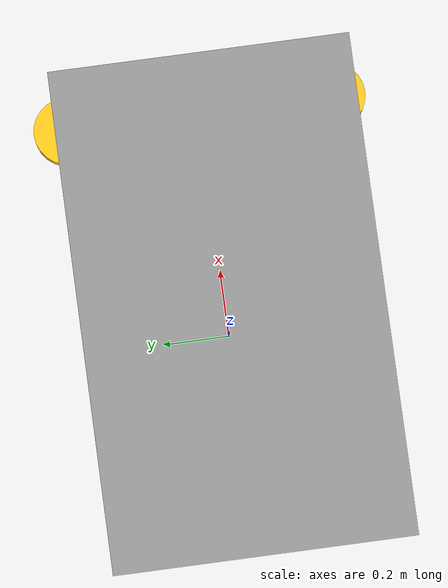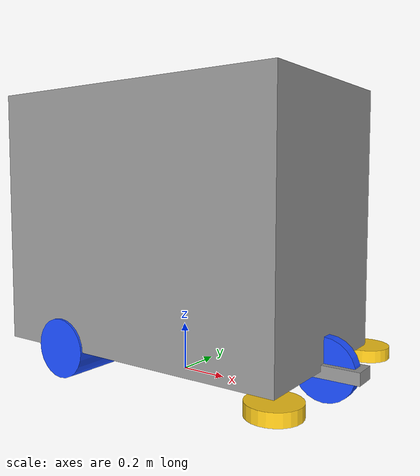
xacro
<?xml version="1.0"?>
<robot xmlns:xacro="http://www.ros.org/wiki/xacro">

  <xacro:include filename="inertial_macros.xacro"/>

  <!-- Eigenschappen -->
  <xacro:property name="base_length" value="1.33"/>
  <xacro:property name="base_width" value="0.8"/>
  <xacro:property name="base_height" value="1.07"/>
  <xacro:property name="base_mass" value="10.0"/>

  <xacro:property name="wheel_radius" value="0.125"/>
  <xacro:property name="wheel_thickness" value="0.05"/>
  <xacro:property name="wheel_mass" value="1.0"/>
  <xacro:property name="wheel_separation" value="0.82"/>

  <xacro:property name="front_wheel_offset_x" value="${base_length/2}"/>
  <xacro:property name="rear_wheel_offset_x" value="${-base_length/2 + 0.32}"/>

  <!-- Wielen komen met hun onderkant op z=0 -->
  <xacro:property name="wheel_offset_z" value="${wheel_radius}"/>

  <xacro:property name="brush_offset_y" value="${base_width/2 + 0.1}"/>
  <xacro:property name="brush_radius" value="0.1"/>
  <xacro:property name="brush_length" value="0.05"/>

  <!-- Kleuren -->
  <material name="blue">
    <color rgba="0.1 0.3 1.0 1.0"/>
  </material>

  <material name="yellow">
    <color rgba="1.0 0.8 0.1 1.0"/>
  </material>

  <material name="gray">
    <color rgba="0.6 0.6 0.6 1.0"/>
  </material>

  <material name="black">
    <color rgba="0 0 0 1"/>
  </material>

  <!-- BASE LINK -->
  <link name="base_link">
    <visual>
      <origin xyz="0 0 ${wheel_offset_z + base_height/2}"/>
      <geometry>
        <box size="${base_length} ${base_width} ${base_height}"/>
      </geometry>
      <material name="gray"/>
    </visual>
    <collision>
      <origin xyz="0 0 ${wheel_offset_z + base_height/2}"/>
      <geometry>
        <box size="${base_length} ${base_width} ${base_height}"/>
      </geometry>
    </collision>
    <xacro:inertial_box mass="${base_mass}" x="${base_length}" y="${base_width}" z="${base_height}">
      <origin xyz="0 0 ${wheel_offset_z + base_height/2}" rpy="0 0 0"/>
    </xacro:inertial_box>
  </link>

  <gazebo reference="base_link">
    <material>Gazebo/Grey</material>
  </gazebo>

  <!-- BACK WHEELS -->
  <joint name="rear_wheel_joint" type="continuous">
    <parent link="base_link"/>
    <child link="back_wheels"/>
    <origin xyz="${rear_wheel_offset_x} 0 ${wheel_offset_z}"/>
    <axis xyz="0 1 0"/>
  </joint>

  <link name="back_wheels">
    <visual>
      <origin xyz="0 0 0" rpy="${pi/2} 0 0"/>
      <geometry>
        <cylinder radius="${wheel_radius}" length="${wheel_separation}"/>
      </geometry>
      <material name="blue"/>
    </visual>
    <collision>
      <origin xyz="0 0 0" rpy="${pi/2} 0 0"/>
      <geometry>
        <cylinder radius="${wheel_radius}" length="${wheel_separation}"/>
      </geometry>
    </collision>
  </link>

  <gazebo reference="back_wheels">
    <material>Gazebo/Blue</material>
  </gazebo>

  <!-- FRONT STEERING -->
  <joint name="steering_joint" type="revolute">
    <parent link="base_link"/>
    <child link="front_steering"/>
    <origin xyz="${front_wheel_offset_x} 0 ${wheel_offset_z}"/>
    <axis xyz="0 0 1"/>
    <limit lower="-0.785" upper="0.785" effort="10" velocity="1.0"/>
  </joint>

  <link name="front_steering">
    <visual>
      <geometry>
        <box size="0.3 0.1 0.05"/>
      </geometry>
      <material name="gray"/>
    </visual>
  </link>

  <gazebo reference="front_steering">
    <material>Gazebo/Grey</material>
  </gazebo>

  <!-- FRONT WHEEL -->
  <joint name="front_wheel_joint" type="continuous">
    <parent link="front_steering"/>
    <child link="front_wheel"/>
    <origin xyz="0 0 0"/>
    <axis xyz="0 1 0"/>
  </joint>

  <link name="front_wheel">
    <visual>
      <origin xyz="0 0 0" rpy="${pi/2} 0 0"/>
      <geometry>
        <cylinder radius="${wheel_radius}" length="${wheel_thickness}"/>
      </geometry>
      <material name="blue"/>
    </visual>
  </link>

  <gazebo reference="front_wheel">
    <material>Gazebo/Blue</material>
  </gazebo>

  <!-- LEFT BRUSH -->
  <joint name="brush_left_joint" type="fixed">
    <parent link="base_link"/>
    <child link="brush_left"/>
    <origin xyz="0.665 ${brush_offset_y - 0.1} ${wheel_offset_z - brush_length/2}"/>
  </joint>

  <link name="brush_left">
    <visual>
      <origin xyz="0 0 0" rpy="0 0 0"/>
      <geometry>
        <cylinder radius="${brush_radius}" length="${brush_length}"/>
      </geometry>
      <material name="yellow"/>
    </visual>
  </link>

  <gazebo reference="brush_left">
    <material>Gazebo/Yellow</material>
  </gazebo>

  <!-- RIGHT BRUSH -->
  <joint name="brush_right_joint" type="fixed">
    <parent link="base_link"/>
    <child link="brush_right"/>
    <origin xyz="0.665 ${-brush_offset_y + 0.1} ${wheel_offset_z - brush_length/2}"/>
  </joint>

  <link name="brush_right">
    <visual>
      <origin xyz="0 0 0" rpy="0 0 0"/>
      <geometry>
        <cylinder radius="${brush_radius}" length="${brush_length}"/>
      </geometry>
      <material name="yellow"/>
    </visual>
  </link>

  <gazebo reference="brush_right">
    <material>Gazebo/Yellow</material>
  </gazebo>

</robot>
